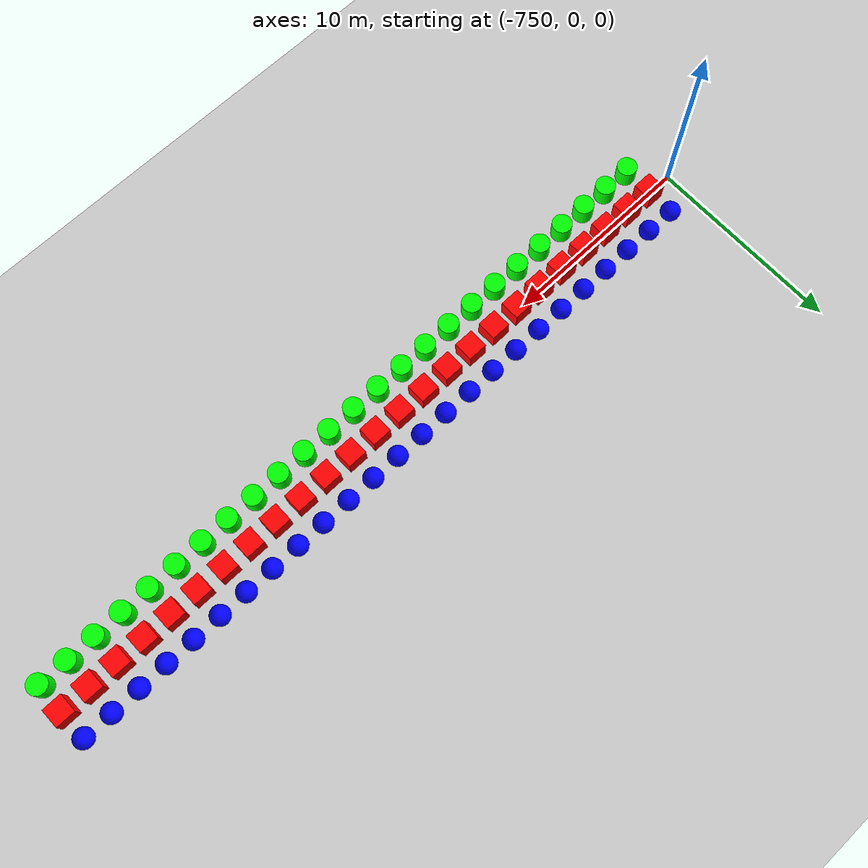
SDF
<sdf version="1.6">
 <world name="shapes">
  <model name="ground_plane">
   <static>true</static>
   <link name="link">
    <collision name="collision">
     <geometry><plane><normal>0 0 1</normal><size>100 100</size></plane></geometry>
    </collision>
    <visual name="visual">
     <geometry><plane><normal>0 0 1</normal><size>100 100</size></plane></geometry>
     <material>
      <ambient>0.8 0.8 0.8 1</ambient>
      <diffuse>0.8 0.8 0.8 1</diffuse>
      <specular>0.8 0.8 0.8 1</specular>
     </material>
    </visual>
   </link>
  </model>
  <model name="box_1">
   <static>true</static>
   <pose>-748.5 0 0.5 0 0 0</pose>
   <link name="box_link">
    <inertial>
     <inertia><ixx>1</ixx><ixy>0</ixy><ixz>0</ixz><iyy>1</iyy><iyz>0</iyz><izz>1</izz></inertia>
     <mass>1.0</mass>
    </inertial>
    <collision name="box_collision"><geometry><box><size>1 1 1</size></box></geometry></collision>
    <visual name="box_visual">
     <geometry><box><size>1 1 1</size></box></geometry>
     <material><ambient>1 0 0 1</ambient><diffuse>1 0 0 1</diffuse><specular>1 0 0 1</specular></material>
    </visual>
   </link>
  </model>
  <model name="cylinder_1">
   <static>true</static>
   <pose>-748.5 -1.5 0.5 0 0 0</pose>
   <link name="cylinder_link">
    <inertial>
     <inertia><ixx>2</ixx><ixy>0</ixy><ixz>0</ixz><iyy>2</iyy><iyz>0</iyz><izz>2</izz></inertia>
     <mass>2.0</mass>
    </inertial>
    <collision name="cylinder_collision">
     <geometry><cylinder><radius>0.5</radius><length>1.0</length></cylinder></geometry>
    </collision>
    <visual name="cylinder_visual">
     <geometry><cylinder><radius>0.5</radius><length>1.0</length></cylinder></geometry>
     <material><ambient>0 1 0 1</ambient><diffuse>0 1 0 1</diffuse><specular>0 1 0 1</specular></material>
    </visual>
   </link>
  </model>
  <model name="sphere_1">
   <static>true</static>
   <pose>-748.5 1.5 0.5 0 0 0</pose>
   <link name="sphere_link">
    <inertial>
     <inertia><ixx>3</ixx><ixy>0</ixy><ixz>0</ixz><iyy>3</iyy><iyz>0</iyz><izz>3</izz></inertia>
     <mass>3.0</mass>
    </inertial>
    <collision name="sphere_collision"><geometry><sphere><radius>0.5</radius></sphere></geometry></collision>
    <visual name="sphere_visual">
     <geometry><sphere><radius>0.5</radius></sphere></geometry>
     <material><ambient>0 0 1 1</ambient><diffuse>0 0 1 1</diffuse><specular>0 0 1 1</specular></material>
    </visual>
   </link>
  </model>
  <model name="box_2">
   <static>true</static>
   <pose>-747.0 0 0.5 0 0 0</pose>
   <link name="box_link">
    <inertial>
     <inertia><ixx>1</ixx><ixy>0</ixy><ixz>0</ixz><iyy>1</iyy><iyz>0</iyz><izz>1</izz></inertia>
     <mass>1.0</mass>
    </inertial>
    <collision name="box_collision"><geometry><box><size>1 1 1</size></box></geometry></collision>
    <visual name="box_visual">
     <geometry><box><size>1 1 1</size></box></geometry>
     <material><ambient>1 0 0 1</ambient><diffuse>1 0 0 1</diffuse><specular>1 0 0 1</specular></material>
    </visual>
   </link>
  </model>
  <model name="cylinder_2">
   <static>true</static>
   <pose>-747.0 -1.5 0.5 0 0 0</pose>
   <link name="cylinder_link">
    <inertial>
     <inertia><ixx>2</ixx><ixy>0</ixy><ixz>0</ixz><iyy>2</iyy><iyz>0</iyz><izz>2</izz></inertia>
     <mass>2.0</mass>
    </inertial>
    <collision name="cylinder_collision">
     <geometry><cylinder><radius>0.5</radius><length>1.0</length></cylinder></geometry>
    </collision>
    <visual name="cylinder_visual">
     <geometry><cylinder><radius>0.5</radius><length>1.0</length></cylinder></geometry>
     <material><ambient>0 1 0 1</ambient><diffuse>0 1 0 1</diffuse><specular>0 1 0 1</specular></material>
    </visual>
   </link>
  </model>
  <model name="sphere_2">
   <static>true</static>
   <pose>-747.0 1.5 0.5 0 0 0</pose>
   <link name="sphere_link">
    <inertial>
     <inertia><ixx>3</ixx><ixy>0</ixy><ixz>0</ixz><iyy>3</iyy><iyz>0</iyz><izz>3</izz></inertia>
     <mass>3.0</mass>
    </inertial>
    <collision name="sphere_collision"><geometry><sphere><radius>0.5</radius></sphere></geometry></collision>
    <visual name="sphere_visual">
     <geometry><sphere><radius>0.5</radius></sphere></geometry>
     <material><ambient>0 0 1 1</ambient><diffuse>0 0 1 1</diffuse><specular>0 0 1 1</specular></material>
    </visual>
   </link>
  </model>
  <model name="box_3">
   <static>true</static>
   <pose>-745.5 0 0.5 0 0 0</pose>
   <link name="box_link">
    <inertial>
     <inertia><ixx>1</ixx><ixy>0</ixy><ixz>0</ixz><iyy>1</iyy><iyz>0</iyz><izz>1</izz></inertia>
     <mass>1.0</mass>
    </inertial>
    <collision name="box_collision"><geometry><box><size>1 1 1</size></box></geometry></collision>
    <visual name="box_visual">
     <geometry><box><size>1 1 1</size></box></geometry>
     <material><ambient>1 0 0 1</ambient><diffuse>1 0 0 1</diffuse><specular>1 0 0 1</specular></material>
    </visual>
   </link>
  </model>
  <model name="cylinder_3">
   <static>true</static>
   <pose>-745.5 -1.5 0.5 0 0 0</pose>
   <link name="cylinder_link">
    <inertial>
     <inertia><ixx>2</ixx><ixy>0</ixy><ixz>0</ixz><iyy>2</iyy><iyz>0</iyz><izz>2</izz></inertia>
     <mass>2.0</mass>
    </inertial>
    <collision name="cylinder_collision">
     <geometry><cylinder><radius>0.5</radius><length>1.0</length></cylinder></geometry>
    </collision>
    <visual name="cylinder_visual">
     <geometry><cylinder><radius>0.5</radius><length>1.0</length></cylinder></geometry>
     <material><ambient>0 1 0 1</ambient><diffuse>0 1 0 1</diffuse><specular>0 1 0 1</specular></material>
    </visual>
   </link>
  </model>
  <model name="sphere_3">
   <static>true</static>
   <pose>-745.5 1.5 0.5 0 0 0</pose>
   <link name="sphere_link">
    <inertial>
     <inertia><ixx>3</ixx><ixy>0</ixy><ixz>0</ixz><iyy>3</iyy><iyz>0</iyz><izz>3</izz></inertia>
     <mass>3.0</mass>
    </inertial>
    <collision name="sphere_collision"><geometry><sphere><radius>0.5</radius></sphere></geometry></collision>
    <visual name="sphere_visual">
     <geometry><sphere><radius>0.5</radius></sphere></geometry>
     <material><ambient>0 0 1 1</ambient><diffuse>0 0 1 1</diffuse><specular>0 0 1 1</specular></material>
    </visual>
   </link>
  </model>
  <model name="box_4">
   <static>true</static>
   <pose>-744.0 0 0.5 0 0 0</pose>
   <link name="box_link">
    <inertial>
     <inertia><ixx>1</ixx><ixy>0</ixy><ixz>0</ixz><iyy>1</iyy><iyz>0</iyz><izz>1</izz></inertia>
     <mass>1.0</mass>
    </inertial>
    <collision name="box_collision"><geometry><box><size>1 1 1</size></box></geometry></collision>
    <visual name="box_visual">
     <geometry><box><size>1 1 1</size></box></geometry>
     <material><ambient>1 0 0 1</ambient><diffuse>1 0 0 1</diffuse><specular>1 0 0 1</specular></material>
    </visual>
   </link>
  </model>
  <model name="cylinder_4">
   <static>true</static>
   <pose>-744.0 -1.5 0.5 0 0 0</pose>
   <link name="cylinder_link">
    <inertial>
     <inertia><ixx>2</ixx><ixy>0</ixy><ixz>0</ixz><iyy>2</iyy><iyz>0</iyz><izz>2</izz></inertia>
     <mass>2.0</mass>
    </inertial>
    <collision name="cylinder_collision">
     <geometry><cylinder><radius>0.5</radius><length>1.0</length></cylinder></geometry>
    </collision>
    <visual name="cylinder_visual">
     <geometry><cylinder><radius>0.5</radius><length>1.0</length></cylinder></geometry>
     <material><ambient>0 1 0 1</ambient><diffuse>0 1 0 1</diffuse><specular>0 1 0 1</specular></material>
    </visual>
   </link>
  </model>
  <model name="sphere_4">
   <static>true</static>
   <pose>-744.0 1.5 0.5 0 0 0</pose>
   <link name="sphere_link">
    <inertial>
     <inertia><ixx>3</ixx><ixy>0</ixy><ixz>0</ixz><iyy>3</iyy><iyz>0</iyz><izz>3</izz></inertia>
     <mass>3.0</mass>
    </inertial>
    <collision name="sphere_collision"><geometry><sphere><radius>0.5</radius></sphere></geometry></collision>
    <visual name="sphere_visual">
     <geometry><sphere><radius>0.5</radius></sphere></geometry>
     <material><ambient>0 0 1 1</ambient><diffuse>0 0 1 1</diffuse><specular>0 0 1 1</specular></material>
    </visual>
   </link>
  </model>
  <model name="box_5">
   <static>true</static>
   <pose>-742.5 0 0.5 0 0 0</pose>
   <link name="box_link">
    <inertial>
     <inertia><ixx>1</ixx><ixy>0</ixy><ixz>0</ixz><iyy>1</iyy><iyz>0</iyz><izz>1</izz></inertia>
     <mass>1.0</mass>
    </inertial>
    <collision name="box_collision"><geometry><box><size>1 1 1</size></box></geometry></collision>
    <visual name="box_visual">
     <geometry><box><size>1 1 1</size></box></geometry>
     <material><ambient>1 0 0 1</ambient><diffuse>1 0 0 1</diffuse><specular>1 0 0 1</specular></material>
    </visual>
   </link>
  </model>
  <model name="cylinder_5">
   <static>true</static>
   <pose>-742.5 -1.5 0.5 0 0 0</pose>
   <link name="cylinder_link">
    <inertial>
     <inertia><ixx>2</ixx><ixy>0</ixy><ixz>0</ixz><iyy>2</iyy><iyz>0</iyz><izz>2</izz></inertia>
     <mass>2.0</mass>
    </inertial>
    <collision name="cylinder_collision">
     <geometry><cylinder><radius>0.5</radius><length>1.0</length></cylinder></geometry>
    </collision>
    <visual name="cylinder_visual">
     <geometry><cylinder><radius>0.5</radius><length>1.0</length></cylinder></geometry>
     <material><ambient>0 1 0 1</ambient><diffuse>0 1 0 1</diffuse><specular>0 1 0 1</specular></material>
    </visual>
   </link>
  </model>
  <model name="sphere_5">
   <static>true</static>
   <pose>-742.5 1.5 0.5 0 0 0</pose>
   <link name="sphere_link">
    <inertial>
     <inertia><ixx>3</ixx><ixy>0</ixy><ixz>0</ixz><iyy>3</iyy><iyz>0</iyz><izz>3</izz></inertia>
     <mass>3.0</mass>
    </inertial>
    <collision name="sphere_collision"><geometry><sphere><radius>0.5</radius></sphere></geometry></collision>
    <visual name="sphere_visual">
     <geometry><sphere><radius>0.5</radius></sphere></geometry>
     <material><ambient>0 0 1 1</ambient><diffuse>0 0 1 1</diffuse><specular>0 0 1 1</specular></material>
    </visual>
   </link>
  </model>
  <model name="box_6">
   <static>true</static>
   <pose>-741.0 0 0.5 0 0 0</pose>
   <link name="box_link">
    <inertial>
     <inertia><ixx>1</ixx><ixy>0</ixy><ixz>0</ixz><iyy>1</iyy><iyz>0</iyz><izz>1</izz></inertia>
     <mass>1.0</mass>
    </inertial>
    <collision name="box_collision"><geometry><box><size>1 1 1</size></box></geometry></collision>
    <visual name="box_visual">
     <geometry><box><size>1 1 1</size></box></geometry>
     <material><ambient>1 0 0 1</ambient><diffuse>1 0 0 1</diffuse><specular>1 0 0 1</specular></material>
    </visual>
   </link>
  </model>
  <model name="cylinder_6">
   <static>true</static>
   <pose>-741.0 -1.5 0.5 0 0 0</pose>
   <link name="cylinder_link">
    <inertial>
     <inertia><ixx>2</ixx><ixy>0</ixy><ixz>0</ixz><iyy>2</iyy><iyz>0</iyz><izz>2</izz></inertia>
     <mass>2.0</mass>
    </inertial>
    <collision name="cylinder_collision">
     <geometry><cylinder><radius>0.5</radius><length>1.0</length></cylinder></geometry>
    </collision>
    <visual name="cylinder_visual">
     <geometry><cylinder><radius>0.5</radius><length>1.0</length></cylinder></geometry>
     <material><ambient>0 1 0 1</ambient><diffuse>0 1 0 1</diffuse><specular>0 1 0 1</specular></material>
    </visual>
   </link>
  </model>
  <model name="sphere_6">
   <static>true</static>
   <pose>-741.0 1.5 0.5 0 0 0</pose>
   <link name="sphere_link">
    <inertial>
     <inertia><ixx>3</ixx><ixy>0</ixy><ixz>0</ixz><iyy>3</iyy><iyz>0</iyz><izz>3</izz></inertia>
     <mass>3.0</mass>
    </inertial>
    <collision name="sphere_collision"><geometry><sphere><radius>0.5</radius></sphere></geometry></collision>
    <visual name="sphere_visual">
     <geometry><sphere><radius>0.5</radius></sphere></geometry>
     <material><ambient>0 0 1 1</ambient><diffuse>0 0 1 1</diffuse><specular>0 0 1 1</specular></material>
    </visual>
   </link>
  </model>
  <model name="box_7">
   <static>true</static>
   <pose>-739.5 0 0.5 0 0 0</pose>
   <link name="box_link">
    <inertial>
     <inertia><ixx>1</ixx><ixy>0</ixy><ixz>0</ixz><iyy>1</iyy><iyz>0</iyz><izz>1</izz></inertia>
     <mass>1.0</mass>
    </inertial>
    <collision name="box_collision"><geometry><box><size>1 1 1</size></box></geometry></collision>
    <visual name="box_visual">
     <geometry><box><size>1 1 1</size></box></geometry>
     <material><ambient>1 0 0 1</ambient><diffuse>1 0 0 1</diffuse><specular>1 0 0 1</specular></material>
    </visual>
   </link>
  </model>
  <model name="cylinder_7">
   <static>true</static>
   <pose>-739.5 -1.5 0.5 0 0 0</pose>
   <link name="cylinder_link">
    <inertial>
     <inertia><ixx>2</ixx><ixy>0</ixy><ixz>0</ixz><iyy>2</iyy><iyz>0</iyz><izz>2</izz></inertia>
     <mass>2.0</mass>
    </inertial>
    <collision name="cylinder_collision">
     <geometry><cylinder><radius>0.5</radius><length>1.0</length></cylinder></geometry>
    </collision>
    <visual name="cylinder_visual">
     <geometry><cylinder><radius>0.5</radius><length>1.0</length></cylinder></geometry>
     <material><ambient>0 1 0 1</ambient><diffuse>0 1 0 1</diffuse><specular>0 1 0 1</specular></material>
    </visual>
   </link>
  </model>
  <model name="sphere_7">
   <static>true</static>
   <pose>-739.5 1.5 0.5 0 0 0</pose>
   <link name="sphere_link">
    <inertial>
     <inertia><ixx>3</ixx><ixy>0</ixy><ixz>0</ixz><iyy>3</iyy><iyz>0</iyz><izz>3</izz></inertia>
     <mass>3.0</mass>
    </inertial>
    <collision name="sphere_collision"><geometry><sphere><radius>0.5</radius></sphere></geometry></collision>
    <visual name="sphere_visual">
     <geometry><sphere><radius>0.5</radius></sphere></geometry>
     <material><ambient>0 0 1 1</ambient><diffuse>0 0 1 1</diffuse><specular>0 0 1 1</specular></material>
    </visual>
   </link>
  </model>
  <model name="box_8">
   <static>true</static>
   <pose>-738.0 0 0.5 0 0 0</pose>
   <link name="box_link">
    <inertial>
     <inertia><ixx>1</ixx><ixy>0</ixy><ixz>0</ixz><iyy>1</iyy><iyz>0</iyz><izz>1</izz></inertia>
     <mass>1.0</mass>
    </inertial>
    <collision name="box_collision"><geometry><box><size>1 1 1</size></box></geometry></collision>
    <visual name="box_visual">
     <geometry><box><size>1 1 1</size></box></geometry>
     <material><ambient>1 0 0 1</ambient><diffuse>1 0 0 1</diffuse><specular>1 0 0 1</specular></material>
    </visual>
   </link>
  </model>
  <model name="cylinder_8">
   <static>true</static>
   <pose>-738.0 -1.5 0.5 0 0 0</pose>
   <link name="cylinder_link">
    <inertial>
     <inertia><ixx>2</ixx><ixy>0</ixy><ixz>0</ixz><iyy>2</iyy><iyz>0</iyz><izz>2</izz></inertia>
     <mass>2.0</mass>
    </inertial>
    <collision name="cylinder_collision">
     <geometry><cylinder><radius>0.5</radius><length>1.0</length></cylinder></geometry>
    </collision>
    <visual name="cylinder_visual">
     <geometry><cylinder><radius>0.5</radius><length>1.0</length></cylinder></geometry>
     <material><ambient>0 1 0 1</ambient><diffuse>0 1 0 1</diffuse><specular>0 1 0 1</specular></material>
    </visual>
   </link>
  </model>
  <model name="sphere_8">
   <static>true</static>
   <pose>-738.0 1.5 0.5 0 0 0</pose>
   <link name="sphere_link">
    <inertial>
     <inertia><ixx>3</ixx><ixy>0</ixy><ixz>0</ixz><iyy>3</iyy><iyz>0</iyz><izz>3</izz></inertia>
     <mass>3.0</mass>
    </inertial>
    <collision name="sphere_collision"><geometry><sphere><radius>0.5</radius></sphere></geometry></collision>
    <visual name="sphere_visual">
     <geometry><sphere><radius>0.5</radius></sphere></geometry>
     <material><ambient>0 0 1 1</ambient><diffuse>0 0 1 1</diffuse><specular>0 0 1 1</specular></material>
    </visual>
   </link>
  </model>
  <model name="box_9">
   <static>true</static>
   <pose>-736.5 0 0.5 0 0 0</pose>
   <link name="box_link">
    <inertial>
     <inertia><ixx>1</ixx><ixy>0</ixy><ixz>0</ixz><iyy>1</iyy><iyz>0</iyz><izz>1</izz></inertia>
     <mass>1.0</mass>
    </inertial>
    <collision name="box_collision"><geometry><box><size>1 1 1</size></box></geometry></collision>
    <visual name="box_visual">
     <geometry><box><size>1 1 1</size></box></geometry>
     <material><ambient>1 0 0 1</ambient><diffuse>1 0 0 1</diffuse><specular>1 0 0 1</specular></material>
    </visual>
   </link>
  </model>
  <model name="cylinder_9">
   <static>true</static>
   <pose>-736.5 -1.5 0.5 0 0 0</pose>
   <link name="cylinder_link">
    <inertial>
     <inertia><ixx>2</ixx><ixy>0</ixy><ixz>0</ixz><iyy>2</iyy><iyz>0</iyz><izz>2</izz></inertia>
     <mass>2.0</mass>
    </inertial>
    <collision name="cylinder_collision">
     <geometry><cylinder><radius>0.5</radius><length>1.0</length></cylinder></geometry>
    </collision>
    <visual name="cylinder_visual">
     <geometry><cylinder><radius>0.5</radius><length>1.0</length></cylinder></geometry>
     <material><ambient>0 1 0 1</ambient><diffuse>0 1 0 1</diffuse><specular>0 1 0 1</specular></material>
    </visual>
   </link>
  </model>
  <model name="sphere_9">
   <static>true</static>
   <pose>-736.5 1.5 0.5 0 0 0</pose>
   <link name="sphere_link">
    <inertial>
     <inertia><ixx>3</ixx><ixy>0</ixy><ixz>0</ixz><iyy>3</iyy><iyz>0</iyz><izz>3</izz></inertia>
     <mass>3.0</mass>
    </inertial>
    <collision name="sphere_collision"><geometry><sphere><radius>0.5</radius></sphere></geometry></collision>
    <visual name="sphere_visual">
     <geometry><sphere><radius>0.5</radius></sphere></geometry>
     <material><ambient>0 0 1 1</ambient><diffuse>0 0 1 1</diffuse><specular>0 0 1 1</specular></material>
    </visual>
   </link>
  </model>
  <model name="box_10">
   <static>true</static>
   <pose>-735.0 0 0.5 0 0 0</pose>
   <link name="box_link">
    <inertial>
     <inertia><ixx>1</ixx><ixy>0</ixy><ixz>0</ixz><iyy>1</iyy><iyz>0</iyz><izz>1</izz></inertia>
     <mass>1.0</mass>
    </inertial>
    <collision name="box_collision"><geometry><box><size>1 1 1</size></box></geometry></collision>
    <visual name="box_visual">
     <geometry><box><size>1 1 1</size></box></geometry>
     <material><ambient>1 0 0 1</ambient><diffuse>1 0 0 1</diffuse><specular>1 0 0 1</specular></material>
    </visual>
   </link>
  </model>
  <model name="cylinder_10">
   <static>true</static>
   <pose>-735.0 -1.5 0.5 0 0 0</pose>
   <link name="cylinder_link">
    <inertial>
     <inertia><ixx>2</ixx><ixy>0</ixy><ixz>0</ixz><iyy>2</iyy><iyz>0</iyz><izz>2</izz></inertia>
     <mass>2.0</mass>
    </inertial>
    <collision name="cylinder_collision">
     <geometry><cylinder><radius>0.5</radius><length>1.0</length></cylinder></geometry>
    </collision>
    <visual name="cylinder_visual">
     <geometry><cylinder><radius>0.5</radius><length>1.0</length></cylinder></geometry>
     <material><ambient>0 1 0 1</ambient><diffuse>0 1 0 1</diffuse><specular>0 1 0 1</specular></material>
    </visual>
   </link>
  </model>
  <model name="sphere_10">
   <static>true</static>
   <pose>-735.0 1.5 0.5 0 0 0</pose>
   <link name="sphere_link">
    <inertial>
     <inertia><ixx>3</ixx><ixy>0</ixy><ixz>0</ixz><iyy>3</iyy><iyz>0</iyz><izz>3</izz></inertia>
     <mass>3.0</mass>
    </inertial>
    <collision name="sphere_collision"><geometry><sphere><radius>0.5</radius></sphere></geometry></collision>
    <visual name="sphere_visual">
     <geometry><sphere><radius>0.5</radius></sphere></geometry>
     <material><ambient>0 0 1 1</ambient><diffuse>0 0 1 1</diffuse><specular>0 0 1 1</specular></material>
    </visual>
   </link>
  </model>
  <model name="box_11">
   <static>true</static>
   <pose>-733.5 0 0.5 0 0 0</pose>
   <link name="box_link">
    <inertial>
     <inertia><ixx>1</ixx><ixy>0</ixy><ixz>0</ixz><iyy>1</iyy><iyz>0</iyz><izz>1</izz></inertia>
     <mass>1.0</mass>
    </inertial>
    <collision name="box_collision"><geometry><box><size>1 1 1</size></box></geometry></collision>
    <visual name="box_visual">
     <geometry><box><size>1 1 1</size></box></geometry>
     <material><ambient>1 0 0 1</ambient><diffuse>1 0 0 1</diffuse><specular>1 0 0 1</specular></material>
    </visual>
   </link>
  </model>
  <model name="cylinder_11">
   <static>true</static>
   <pose>-733.5 -1.5 0.5 0 0 0</pose>
   <link name="cylinder_link">
    <inertial>
     <inertia><ixx>2</ixx><ixy>0</ixy><ixz>0</ixz><iyy>2</iyy><iyz>0</iyz><izz>2</izz></inertia>
     <mass>2.0</mass>
    </inertial>
    <collision name="cylinder_collision">
     <geometry><cylinder><radius>0.5</radius><length>1.0</length></cylinder></geometry>
    </collision>
    <visual name="cylinder_visual">
     <geometry><cylinder><radius>0.5</radius><length>1.0</length></cylinder></geometry>
     <material><ambient>0 1 0 1</ambient><diffuse>0 1 0 1</diffuse><specular>0 1 0 1</specular></material>
    </visual>
   </link>
  </model>
  <model name="sphere_11">
   <static>true</static>
   <pose>-733.5 1.5 0.5 0 0 0</pose>
   <link name="sphere_link">
    <inertial>
     <inertia><ixx>3</ixx><ixy>0</ixy><ixz>0</ixz><iyy>3</iyy><iyz>0</iyz><izz>3</izz></inertia>
     <mass>3.0</mass>
    </inertial>
    <collision name="sphere_collision"><geometry><sphere><radius>0.5</radius></sphere></geometry></collision>
    <visual name="sphere_visual">
     <geometry><sphere><radius>0.5</radius></sphere></geometry>
     <material><ambient>0 0 1 1</ambient><diffuse>0 0 1 1</diffuse><specular>0 0 1 1</specular></material>
    </visual>
   </link>
  </model>
  <model name="box_12">
   <static>true</static>
   <pose>-732.0 0 0.5 0 0 0</pose>
   <link name="box_link">
    <inertial>
     <inertia><ixx>1</ixx><ixy>0</ixy><ixz>0</ixz><iyy>1</iyy><iyz>0</iyz><izz>1</izz></inertia>
     <mass>1.0</mass>
    </inertial>
    <collision name="box_collision"><geometry><box><size>1 1 1</size></box></geometry></collision>
    <visual name="box_visual">
     <geometry><box><size>1 1 1</size></box></geometry>
     <material><ambient>1 0 0 1</ambient><diffuse>1 0 0 1</diffuse><specular>1 0 0 1</specular></material>
    </visual>
   </link>
  </model>
  <model name="cylinder_12">
   <static>true</static>
   <pose>-732.0 -1.5 0.5 0 0 0</pose>
   <link name="cylinder_link">
    <inertial>
     <inertia><ixx>2</ixx><ixy>0</ixy><ixz>0</ixz><iyy>2</iyy><iyz>0</iyz><izz>2</izz></inertia>
     <mass>2.0</mass>
    </inertial>
    <collision name="cylinder_collision">
     <geometry><cylinder><radius>0.5</radius><length>1.0</length></cylinder></geometry>
    </collision>
    <visual name="cylinder_visual">
     <geometry><cylinder><radius>0.5</radius><length>1.0</length></cylinder></geometry>
     <material><ambient>0 1 0 1</ambient><diffuse>0 1 0 1</diffuse><specular>0 1 0 1</specular></material>
    </visual>
   </link>
  </model>
  <model name="sphere_12">
   <static>true</static>
   <pose>-732.0 1.5 0.5 0 0 0</pose>
   <link name="sphere_link">
    <inertial>
     <inertia><ixx>3</ixx><ixy>0</ixy><ixz>0</ixz><iyy>3</iyy><iyz>0</iyz><izz>3</izz></inertia>
     <mass>3.0</mass>
    </inertial>
    <collision name="sphere_collision"><geometry><sphere><radius>0.5</radius></sphere></geometry></collision>
    <visual name="sphere_visual">
     <geometry><sphere><radius>0.5</radius></sphere></geometry>
     <material><ambient>0 0 1 1</ambient><diffuse>0 0 1 1</diffuse><specular>0 0 1 1</specular></material>
    </visual>
   </link>
  </model>
  <model name="box_13">
   <static>true</static>
   <pose>-730.5 0 0.5 0 0 0</pose>
   <link name="box_link">
    <inertial>
     <inertia><ixx>1</ixx><ixy>0</ixy><ixz>0</ixz><iyy>1</iyy><iyz>0</iyz><izz>1</izz></inertia>
     <mass>1.0</mass>
    </inertial>
    <collision name="box_collision"><geometry><box><size>1 1 1</size></box></geometry></collision>
    <visual name="box_visual">
     <geometry><box><size>1 1 1</size></box></geometry>
     <material><ambient>1 0 0 1</ambient><diffuse>1 0 0 1</diffuse><specular>1 0 0 1</specular></material>
    </visual>
   </link>
  </model>
  <model name="cylinder_13">
   <static>true</static>
   <pose>-730.5 -1.5 0.5 0 0 0</pose>
   <link name="cylinder_link">
    <inertial>
     <inertia><ixx>2</ixx><ixy>0</ixy><ixz>0</ixz><iyy>2</iyy><iyz>0</iyz><izz>2</izz></inertia>
     <mass>2.0</mass>
    </inertial>
    <collision name="cylinder_collision">
     <geometry><cylinder><radius>0.5</radius><length>1.0</length></cylinder></geometry>
    </collision>
    <visual name="cylinder_visual">
     <geometry><cylinder><radius>0.5</radius><length>1.0</length></cylinder></geometry>
     <material><ambient>0 1 0 1</ambient><diffuse>0 1 0 1</diffuse><specular>0 1 0 1</specular></material>
    </visual>
   </link>
  </model>
  <model name="sphere_13">
   <static>true</static>
   <pose>-730.5 1.5 0.5 0 0 0</pose>
   <link name="sphere_link">
    <inertial>
     <inertia><ixx>3</ixx><ixy>0</ixy><ixz>0</ixz><iyy>3</iyy><iyz>0</iyz><izz>3</izz></inertia>
     <mass>3.0</mass>
    </inertial>
    <collision name="sphere_collision"><geometry><sphere><radius>0.5</radius></sphere></geometry></collision>
    <visual name="sphere_visual">
     <geometry><sphere><radius>0.5</radius></sphere></geometry>
     <material><ambient>0 0 1 1</ambient><diffuse>0 0 1 1</diffuse><specular>0 0 1 1</specular></material>
    </visual>
   </link>
  </model>
  <model name="box_14">
   <static>true</static>
   <pose>-729.0 0 0.5 0 0 0</pose>
   <link name="box_link">
    <inertial>
     <inertia><ixx>1</ixx><ixy>0</ixy><ixz>0</ixz><iyy>1</iyy><iyz>0</iyz><izz>1</izz></inertia>
     <mass>1.0</mass>
    </inertial>
    <collision name="box_collision"><geometry><box><size>1 1 1</size></box></geometry></collision>
    <visual name="box_visual">
     <geometry><box><size>1 1 1</size></box></geometry>
     <material><ambient>1 0 0 1</ambient><diffuse>1 0 0 1</diffuse><specular>1 0 0 1</specular></material>
    </visual>
   </link>
  </model>
  <model name="cylinder_14">
   <static>true</static>
   <pose>-729.0 -1.5 0.5 0 0 0</pose>
   <link name="cylinder_link">
    <inertial>
     <inertia><ixx>2</ixx><ixy>0</ixy><ixz>0</ixz><iyy>2</iyy><iyz>0</iyz><izz>2</izz></inertia>
     <mass>2.0</mass>
    </inertial>
    <collision name="cylinder_collision">
     <geometry><cylinder><radius>0.5</radius><length>1.0</length></cylinder></geometry>
    </collision>
    <visual name="cylinder_visual">
     <geometry><cylinder><radius>0.5</radius><length>1.0</length></cylinder></geometry>
     <material><ambient>0 1 0 1</ambient><diffuse>0 1 0 1</diffuse><specular>0 1 0 1</specular></material>
    </visual>
   </link>
  </model>
  <model name="sphere_14">
   <static>true</static>
   <pose>-729.0 1.5 0.5 0 0 0</pose>
   <link name="sphere_link">
    <inertial>
     <inertia><ixx>3</ixx><ixy>0</ixy><ixz>0</ixz><iyy>3</iyy><iyz>0</iyz><izz>3</izz></inertia>
     <mass>3.0</mass>
    </inertial>
    <collision name="sphere_collision"><geometry><sphere><radius>0.5</radius></sphere></geometry></collision>
    <visual name="sphere_visual">
     <geometry><sphere><radius>0.5</radius></sphere></geometry>
     <material><ambient>0 0 1 1</ambient><diffuse>0 0 1 1</diffuse><specular>0 0 1 1</specular></material>
    </visual>
   </link>
  </model>
  <model name="box_15">
   <static>true</static>
   <pose>-727.5 0 0.5 0 0 0</pose>
   <link name="box_link">
    <inertial>
     <inertia><ixx>1</ixx><ixy>0</ixy><ixz>0</ixz><iyy>1</iyy><iyz>0</iyz><izz>1</izz></inertia>
     <mass>1.0</mass>
    </inertial>
    <collision name="box_collision"><geometry><box><size>1 1 1</size></box></geometry></collision>
    <visual name="box_visual">
     <geometry><box><size>1 1 1</size></box></geometry>
     <material><ambient>1 0 0 1</ambient><diffuse>1 0 0 1</diffuse><specular>1 0 0 1</specular></material>
    </visual>
   </link>
  </model>
  <model name="cylinder_15">
   <static>true</static>
   <pose>-727.5 -1.5 0.5 0 0 0</pose>
   <link name="cylinder_link">
    <inertial>
     <inertia><ixx>2</ixx><ixy>0</ixy><ixz>0</ixz><iyy>2</iyy><iyz>0</iyz><izz>2</izz></inertia>
     <mass>2.0</mass>
    </inertial>
    <collision name="cylinder_collision">
     <geometry><cylinder><radius>0.5</radius><length>1.0</length></cylinder></geometry>
    </collision>
    <visual name="cylinder_visual">
     <geometry><cylinder><radius>0.5</radius><length>1.0</length></cylinder></geometry>
     <material><ambient>0 1 0 1</ambient><diffuse>0 1 0 1</diffuse><specular>0 1 0 1</specular></material>
    </visual>
   </link>
  </model>
  <model name="sphere_15">
   <static>true</static>
   <pose>-727.5 1.5 0.5 0 0 0</pose>
   <link name="sphere_link">
    <inertial>
     <inertia><ixx>3</ixx><ixy>0</ixy><ixz>0</ixz><iyy>3</iyy><iyz>0</iyz><izz>3</izz></inertia>
     <mass>3.0</mass>
    </inertial>
    <collision name="sphere_collision"><geometry><sphere><radius>0.5</radius></sphere></geometry></collision>
    <visual name="sphere_visual">
     <geometry><sphere><radius>0.5</radius></sphere></geometry>
     <material><ambient>0 0 1 1</ambient><diffuse>0 0 1 1</diffuse><specular>0 0 1 1</specular></material>
    </visual>
   </link>
  </model>
  <model name="box_16">
   <static>true</static>
   <pose>-726.0 0 0.5 0 0 0</pose>
   <link name="box_link">
    <inertial>
     <inertia><ixx>1</ixx><ixy>0</ixy><ixz>0</ixz><iyy>1</iyy><iyz>0</iyz><izz>1</izz></inertia>
     <mass>1.0</mass>
    </inertial>
    <collision name="box_collision"><geometry><box><size>1 1 1</size></box></geometry></collision>
    <visual name="box_visual">
     <geometry><box><size>1 1 1</size></box></geometry>
     <material><ambient>1 0 0 1</ambient><diffuse>1 0 0 1</diffuse><specular>1 0 0 1</specular></material>
    </visual>
   </link>
  </model>
  <model name="cylinder_16">
   <static>true</static>
   <pose>-726.0 -1.5 0.5 0 0 0</pose>
   <link name="cylinder_link">
    <inertial>
     <inertia><ixx>2</ixx><ixy>0</ixy><ixz>0</ixz><iyy>2</iyy><iyz>0</iyz><izz>2</izz></inertia>
     <mass>2.0</mass>
    </inertial>
    <collision name="cylinder_collision">
     <geometry><cylinder><radius>0.5</radius><length>1.0</length></cylinder></geometry>
    </collision>
    <visual name="cylinder_visual">
     <geometry><cylinder><radius>0.5</radius><length>1.0</length></cylinder></geometry>
     <material><ambient>0 1 0 1</ambient><diffuse>0 1 0 1</diffuse><specular>0 1 0 1</specular></material>
    </visual>
   </link>
  </model>
  <model name="sphere_16">
   <static>true</static>
   <pose>-726.0 1.5 0.5 0 0 0</pose>
   <link name="sphere_link">
    <inertial>
     <inertia><ixx>3</ixx><ixy>0</ixy><ixz>0</ixz><iyy>3</iyy><iyz>0</iyz><izz>3</izz></inertia>
     <mass>3.0</mass>
    </inertial>
    <collision name="sphere_collision"><geometry><sphere><radius>0.5</radius></sphere></geometry></collision>
    <visual name="sphere_visual">
     <geometry><sphere><radius>0.5</radius></sphere></geometry>
     <material><ambient>0 0 1 1</ambient><diffuse>0 0 1 1</diffuse><specular>0 0 1 1</specular></material>
    </visual>
   </link>
  </model>
  <model name="box_17">
   <static>true</static>
   <pose>-724.5 0 0.5 0 0 0</pose>
   <link name="box_link">
    <inertial>
     <inertia><ixx>1</ixx><ixy>0</ixy><ixz>0</ixz><iyy>1</iyy><iyz>0</iyz><izz>1</izz></inertia>
     <mass>1.0</mass>
    </inertial>
    <collision name="box_collision"><geometry><box><size>1 1 1</size></box></geometry></collision>
    <visual name="box_visual">
     <geometry><box><size>1 1 1</size></box></geometry>
     <material><ambient>1 0 0 1</ambient><diffuse>1 0 0 1</diffuse><specular>1 0 0 1</specular></material>
    </visual>
   </link>
  </model>
  <model name="cylinder_17">
   <static>true</static>
   <pose>-724.5 -1.5 0.5 0 0 0</pose>
   <link name="cylinder_link">
    <inertial>
     <inertia><ixx>2</ixx><ixy>0</ixy><ixz>0</ixz><iyy>2</iyy><iyz>0</iyz><izz>2</izz></inertia>
     <mass>2.0</mass>
    </inertial>
    <collision name="cylinder_collision">
     <geometry><cylinder><radius>0.5</radius><length>1.0</length></cylinder></geometry>
    </collision>
    <visual name="cylinder_visual">
     <geometry><cylinder><radius>0.5</radius><length>1.0</length></cylinder></geometry>
     <material><ambient>0 1 0 1</ambient><diffuse>0 1 0 1</diffuse><specular>0 1 0 1</specular></material>
    </visual>
   </link>
  </model>
  <model name="sphere_17">
   <static>true</static>
   <pose>-724.5 1.5 0.5 0 0 0</pose>
   <link name="sphere_link">
    <inertial>
     <inertia><ixx>3</ixx><ixy>0</ixy><ixz>0</ixz><iyy>3</iyy><iyz>0</iyz><izz>3</izz></inertia>
     <mass>3.0</mass>
    </inertial>
    <collision name="sphere_collision"><geometry><sphere><radius>0.5</radius></sphere></geometry></collision>
    <visual name="sphere_visual">
     <geometry><sphere><radius>0.5</radius></sphere></geometry>
     <material><ambient>0 0 1 1</ambient><diffuse>0 0 1 1</diffuse><specular>0 0 1 1</specular></material>
    </visual>
   </link>
  </model>
  <model name="box_18">
   <static>true</static>
   <pose>-723.0 0 0.5 0 0 0</pose>
   <link name="box_link">
    <inertial>
     <inertia><ixx>1</ixx><ixy>0</ixy><ixz>0</ixz><iyy>1</iyy><iyz>0</iyz><izz>1</izz></inertia>
     <mass>1.0</mass>
    </inertial>
    <collision name="box_collision"><geometry><box><size>1 1 1</size></box></geometry></collision>
    <visual name="box_visual">
     <geometry><box><size>1 1 1</size></box></geometry>
     <material><ambient>1 0 0 1</ambient><diffuse>1 0 0 1</diffuse><specular>1 0 0 1</specular></material>
    </visual>
   </link>
  </model>
  <model name="cylinder_18">
   <static>true</static>
   <pose>-723.0 -1.5 0.5 0 0 0</pose>
   <link name="cylinder_link">
    <inertial>
     <inertia><ixx>2</ixx><ixy>0</ixy><ixz>0</ixz><iyy>2</iyy><iyz>0</iyz><izz>2</izz></inertia>
     <mass>2.0</mass>
    </inertial>
    <collision name="cylinder_collision">
     <geometry><cylinder><radius>0.5</radius><length>1.0</length></cylinder></geometry>
    </collision>
    <visual name="cylinder_visual">
     <geometry><cylinder><radius>0.5</radius><length>1.0</length></cylinder></geometry>
     <material><ambient>0 1 0 1</ambient><diffuse>0 1 0 1</diffuse><specular>0 1 0 1</specular></material>
    </visual>
   </link>
  </model>
  <model name="sphere_18">
   <static>true</static>
   <pose>-723.0 1.5 0.5 0 0 0</pose>
   <link name="sphere_link">
    <inertial>
     <inertia><ixx>3</ixx><ixy>0</ixy><ixz>0</ixz><iyy>3</iyy><iyz>0</iyz><izz>3</izz></inertia>
     <mass>3.0</mass>
    </inertial>
    <collision name="sphere_collision"><geometry><sphere><radius>0.5</radius></sphere></geometry></collision>
    <visual name="sphere_visual">
     <geometry><sphere><radius>0.5</radius></sphere></geometry>
     <material><ambient>0 0 1 1</ambient><diffuse>0 0 1 1</diffuse><specular>0 0 1 1</specular></material>
    </visual>
   </link>
  </model>
  <model name="box_19">
   <static>true</static>
   <pose>-721.5 0 0.5 0 0 0</pose>
   <link name="box_link">
    <inertial>
     <inertia><ixx>1</ixx><ixy>0</ixy><ixz>0</ixz><iyy>1</iyy><iyz>0</iyz><izz>1</izz></inertia>
     <mass>1.0</mass>
    </inertial>
    <collision name="box_collision"><geometry><box><size>1 1 1</size></box></geometry></collision>
    <visual name="box_visual">
     <geometry><box><size>1 1 1</size></box></geometry>
     <material><ambient>1 0 0 1</ambient><diffuse>1 0 0 1</diffuse><specular>1 0 0 1</specular></material>
    </visual>
   </link>
  </model>
  <model name="cylinder_19">
   <static>true</static>
   <pose>-721.5 -1.5 0.5 0 0 0</pose>
   <link name="cylinder_link">
    <inertial>
     <inertia><ixx>2</ixx><ixy>0</ixy><ixz>0</ixz><iyy>2</iyy><iyz>0</iyz><izz>2</izz></inertia>
     <mass>2.0</mass>
    </inertial>
    <collision name="cylinder_collision">
     <geometry><cylinder><radius>0.5</radius><length>1.0</length></cylinder></geometry>
    </collision>
    <visual name="cylinder_visual">
     <geometry><cylinder><radius>0.5</radius><length>1.0</length></cylinder></geometry>
     <material><ambient>0 1 0 1</ambient><diffuse>0 1 0 1</diffuse><specular>0 1 0 1</specular></material>
    </visual>
   </link>
  </model>
  <model name="sphere_19">
   <static>true</static>
   <pose>-721.5 1.5 0.5 0 0 0</pose>
   <link name="sphere_link">
    <inertial>
     <inertia><ixx>3</ixx><ixy>0</ixy><ixz>0</ixz><iyy>3</iyy><iyz>0</iyz><izz>3</izz></inertia>
     <mass>3.0</mass>
    </inertial>
    <collision name="sphere_collision"><geometry><sphere><radius>0.5</radius></sphere></geometry></collision>
    <visual name="sphere_visual">
     <geometry><sphere><radius>0.5</radius></sphere></geometry>
     <material><ambient>0 0 1 1</ambient><diffuse>0 0 1 1</diffuse><specular>0 0 1 1</specular></material>
    </visual>
   </link>
  </model>
  <model name="box_20">
   <static>true</static>
   <pose>-720.0 0 0.5 0 0 0</pose>
   <link name="box_link">
    <inertial>
     <inertia><ixx>1</ixx><ixy>0</ixy><ixz>0</ixz><iyy>1</iyy><iyz>0</iyz><izz>1</izz></inertia>
     <mass>1.0</mass>
    </inertial>
    <collision name="box_collision"><geometry><box><size>1 1 1</size></box></geometry></collision>
    <visual name="box_visual">
     <geometry><box><size>1 1 1</size></box></geometry>
     <material><ambient>1 0 0 1</ambient><diffuse>1 0 0 1</diffuse><specular>1 0 0 1</specular></material>
    </visual>
   </link>
  </model>
  <model name="cylinder_20">
   <static>true</static>
   <pose>-720.0 -1.5 0.5 0 0 0</pose>
   <link name="cylinder_link">
    <inertial>
     <inertia><ixx>2</ixx><ixy>0</ixy><ixz>0</ixz><iyy>2</iyy><iyz>0</iyz><izz>2</izz></inertia>
     <mass>2.0</mass>
    </inertial>
    <collision name="cylinder_collision">
     <geometry><cylinder><radius>0.5</radius><length>1.0</length></cylinder></geometry>
    </collision>
    <visual name="cylinder_visual">
     <geometry><cylinder><radius>0.5</radius><length>1.0</length></cylinder></geometry>
     <material><ambient>0 1 0 1</ambient><diffuse>0 1 0 1</diffuse><specular>0 1 0 1</specular></material>
    </visual>
   </link>
  </model>
  <model name="sphere_20">
   <static>true</static>
   <pose>-720.0 1.5 0.5 0 0 0</pose>
   <link name="sphere_link">
    <inertial>
     <inertia><ixx>3</ixx><ixy>0</ixy><ixz>0</ixz><iyy>3</iyy><iyz>0</iyz><izz>3</izz></inertia>
     <mass>3.0</mass>
    </inertial>
    <collision name="sphere_collision"><geometry><sphere><radius>0.5</radius></sphere></geometry></collision>
    <visual name="sphere_visual">
     <geometry><sphere><radius>0.5</radius></sphere></geometry>
     <material><ambient>0 0 1 1</ambient><diffuse>0 0 1 1</diffuse><specular>0 0 1 1</specular></material>
    </visual>
   </link>
  </model>
  <model name="box_21">
   <static>true</static>
   <pose>-718.5 0 0.5 0 0 0</pose>
   <link name="box_link">
    <inertial>
     <inertia><ixx>1</ixx><ixy>0</ixy><ixz>0</ixz><iyy>1</iyy><iyz>0</iyz><izz>1</izz></inertia>
     <mass>1.0</mass>
    </inertial>
    <collision name="box_collision"><geometry><box><size>1 1 1</size></box></geometry></collision>
    <visual name="box_visual">
     <geometry><box><size>1 1 1</size></box></geometry>
     <material><ambient>1 0 0 1</ambient><diffuse>1 0 0 1</diffuse><specular>1 0 0 1</specular></material>
    </visual>
   </link>
  </model>
  <model name="cylinder_21">
   <static>true</static>
   <pose>-718.5 -1.5 0.5 0 0 0</pose>
   <link name="cylinder_link">
    <inertial>
     <inertia><ixx>2</ixx><ixy>0</ixy><ixz>0</ixz><iyy>2</iyy><iyz>0</iyz><izz>2</izz></inertia>
     <mass>2.0</mass>
    </inertial>
    <collision name="cylinder_collision">
     <geometry><cylinder><radius>0.5</radius><length>1.0</length></cylinder></geometry>
    </collision>
    <visual name="cylinder_visual">
     <geometry><cylinder><radius>0.5</radius><length>1.0</length></cylinder></geometry>
     <material><ambient>0 1 0 1</ambient><diffuse>0 1 0 1</diffuse><specular>0 1 0 1</specular></material>
    </visual>
   </link>
  </model>
  <model name="sphere_21">
   <static>true</static>
   <pose>-718.5 1.5 0.5 0 0 0</pose>
   <link name="sphere_link">
    <inertial>
     <inertia><ixx>3</ixx><ixy>0</ixy><ixz>0</ixz><iyy>3</iyy><iyz>0</iyz><izz>3</izz></inertia>
     <mass>3.0</mass>
    </inertial>
    <collision name="sphere_collision"><geometry><sphere><radius>0.5</radius></sphere></geometry></collision>
    <visual name="sphere_visual">
     <geometry><sphere><radius>0.5</radius></sphere></geometry>
     <material><ambient>0 0 1 1</ambient><diffuse>0 0 1 1</diffuse><specular>0 0 1 1</specular></material>
    </visual>
   </link>
  </model>
  <model name="box_22">
   <static>true</static>
   <pose>-717.0 0 0.5 0 0 0</pose>
   <link name="box_link">
    <inertial>
     <inertia><ixx>1</ixx><ixy>0</ixy><ixz>0</ixz><iyy>1</iyy><iyz>0</iyz><izz>1</izz></inertia>
     <mass>1.0</mass>
    </inertial>
    <collision name="box_collision"><geometry><box><size>1 1 1</size></box></geometry></collision>
    <visual name="box_visual">
     <geometry><box><size>1 1 1</size></box></geometry>
     <material><ambient>1 0 0 1</ambient><diffuse>1 0 0 1</diffuse><specular>1 0 0 1</specular></material>
    </visual>
   </link>
  </model>
  <model name="cylinder_22">
   <static>true</static>
   <pose>-717.0 -1.5 0.5 0 0 0</pose>
   <link name="cylinder_link">
    <inertial>
     <inertia><ixx>2</ixx><ixy>0</ixy><ixz>0</ixz><iyy>2</iyy><iyz>0</iyz><izz>2</izz></inertia>
     <mass>2.0</mass>
    </inertial>
    <collision name="cylinder_collision">
     <geometry><cylinder><radius>0.5</radius><length>1.0</length></cylinder></geometry>
    </collision>
    <visual name="cylinder_visual">
     <geometry><cylinder><radius>0.5</radius><length>1.0</length></cylinder></geometry>
     <material><ambient>0 1 0 1</ambient><diffuse>0 1 0 1</diffuse><specular>0 1 0 1</specular></material>
    </visual>
   </link>
  </model>
  <model name="sphere_22">
   <static>true</static>
   <pose>-717.0 1.5 0.5 0 0 0</pose>
   <link name="sphere_link">
    <inertial>
     <inertia><ixx>3</ixx><ixy>0</ixy><ixz>0</ixz><iyy>3</iyy><iyz>0</iyz><izz>3</izz></inertia>
     <mass>3.0</mass>
    </inertial>
    <collision name="sphere_collision"><geometry><sphere><radius>0.5</radius></sphere></geometry></collision>
    <visual name="sphere_visual">
     <geometry><sphere><radius>0.5</radius></sphere></geometry>
     <material><ambient>0 0 1 1</ambient><diffuse>0 0 1 1</diffuse><specular>0 0 1 1</specular></material>
    </visual>
   </link>
  </model>
  <model name="box_23">
   <static>true</static>
   <pose>-715.5 0 0.5 0 0 0</pose>
   <link name="box_link">
    <inertial>
     <inertia><ixx>1</ixx><ixy>0</ixy><ixz>0</ixz><iyy>1</iyy><iyz>0</iyz><izz>1</izz></inertia>
     <mass>1.0</mass>
    </inertial>
    <collision name="box_collision"><geometry><box><size>1 1 1</size></box></geometry></collision>
    <visual name="box_visual">
     <geometry><box><size>1 1 1</size></box></geometry>
     <material><ambient>1 0 0 1</ambient><diffuse>1 0 0 1</diffuse><specular>1 0 0 1</specular></material>
    </visual>
   </link>
  </model>
  <model name="cylinder_23">
   <static>true</static>
   <pose>-715.5 -1.5 0.5 0 0 0</pose>
   <link name="cylinder_link">
    <inertial>
     <inertia><ixx>2</ixx><ixy>0</ixy><ixz>0</ixz><iyy>2</iyy><iyz>0</iyz><izz>2</izz></inertia>
     <mass>2.0</mass>
    </inertial>
    <collision name="cylinder_collision">
     <geometry><cylinder><radius>0.5</radius><length>1.0</length></cylinder></geometry>
    </collision>
    <visual name="cylinder_visual">
     <geometry><cylinder><radius>0.5</radius><length>1.0</length></cylinder></geometry>
     <material><ambient>0 1 0 1</ambient><diffuse>0 1 0 1</diffuse><specular>0 1 0 1</specular></material>
    </visual>
   </link>
  </model>
  <model name="sphere_23">
   <static>true</static>
   <pose>-715.5 1.5 0.5 0 0 0</pose>
   <link name="sphere_link">
    <inertial>
     <inertia><ixx>3</ixx><ixy>0</ixy><ixz>0</ixz><iyy>3</iyy><iyz>0</iyz><izz>3</izz></inertia>
     <mass>3.0</mass>
    </inertial>
    <collision name="sphere_collision"><geometry><sphere><radius>0.5</radius></sphere></geometry></collision>
    <visual name="sphere_visual">
     <geometry><sphere><radius>0.5</radius></sphere></geometry>
     <material><ambient>0 0 1 1</ambient><diffuse>0 0 1 1</diffuse><specular>0 0 1 1</specular></material>
    </visual>
   </link>
  </model>
  <model name="box_24">
   <static>true</static>
   <pose>-714.0 0 0.5 0 0 0</pose>
   <link name="box_link">
    <inertial>
     <inertia><ixx>1</ixx><ixy>0</ixy><ixz>0</ixz><iyy>1</iyy><iyz>0</iyz><izz>1</izz></inertia>
     <mass>1.0</mass>
    </inertial>
    <collision name="box_collision"><geometry><box><size>1 1 1</size></box></geometry></collision>
    <visual name="box_visual">
     <geometry><box><size>1 1 1</size></box></geometry>
     <material><ambient>1 0 0 1</ambient><diffuse>1 0 0 1</diffuse><specular>1 0 0 1</specular></material>
    </visual>
   </link>
  </model>
  <model name="cylinder_24">
   <static>true</static>
   <pose>-714.0 -1.5 0.5 0 0 0</pose>
   <link name="cylinder_link">
    <inertial>
     <inertia><ixx>2</ixx><ixy>0</ixy><ixz>0</ixz><iyy>2</iyy><iyz>0</iyz><izz>2</izz></inertia>
     <mass>2.0</mass>
    </inertial>
    <collision name="cylinder_collision">
     <geometry><cylinder><radius>0.5</radius><length>1.0</length></cylinder></geometry>
    </collision>
    <visual name="cylinder_visual">
     <geometry><cylinder><radius>0.5</radius><length>1.0</length></cylinder></geometry>
     <material><ambient>0 1 0 1</ambient><diffuse>0 1 0 1</diffuse><specular>0 1 0 1</specular></material>
    </visual>
   </link>
  </model>
  <model name="sphere_24">
   <static>true</static>
   <pose>-714.0 1.5 0.5 0 0 0</pose>
   <link name="sphere_link">
    <inertial>
     <inertia><ixx>3</ixx><ixy>0</ixy><ixz>0</ixz><iyy>3</iyy><iyz>0</iyz><izz>3</izz></inertia>
     <mass>3.0</mass>
    </inertial>
    <collision name="sphere_collision"><geometry><sphere><radius>0.5</radius></sphere></geometry></collision>
    <visual name="sphere_visual">
     <geometry><sphere><radius>0.5</radius></sphere></geometry>
     <material><ambient>0 0 1 1</ambient><diffuse>0 0 1 1</diffuse><specular>0 0 1 1</specular></material>
    </visual>
   </link>
  </model>
  <model name="box_25">
   <static>true</static>
   <pose>-712.5 0 0.5 0 0 0</pose>
   <link name="box_link">
    <inertial>
     <inertia><ixx>1</ixx><ixy>0</ixy><ixz>0</ixz><iyy>1</iyy><iyz>0</iyz><izz>1</izz></inertia>
     <mass>1.0</mass>
    </inertial>
    <collision name="box_collision"><geometry><box><size>1 1 1</size></box></geometry></collision>
    <visual name="box_visual">
     <geometry><box><size>1 1 1</size></box></geometry>
     <material><ambient>1 0 0 1</ambient><diffuse>1 0 0 1</diffuse><specular>1 0 0 1</specular></material>
    </visual>
   </link>
  </model>
  <model name="cylinder_25">
   <static>true</static>
   <pose>-712.5 -1.5 0.5 0 0 0</pose>
   <link name="cylinder_link">
    <inertial>
     <inertia><ixx>2</ixx><ixy>0</ixy><ixz>0</ixz><iyy>2</iyy><iyz>0</iyz><izz>2</izz></inertia>
     <mass>2.0</mass>
    </inertial>
    <collision name="cylinder_collision">
     <geometry><cylinder><radius>0.5</radius><length>1.0</length></cylinder></geometry>
    </collision>
    <visual name="cylinder_visual">
     <geometry><cylinder><radius>0.5</radius><length>1.0</length></cylinder></geometry>
     <material><ambient>0 1 0 1</ambient><diffuse>0 1 0 1</diffuse><specular>0 1 0 1</specular></material>
    </visual>
   </link>
  </model>
  <model name="sphere_25">
   <static>true</static>
   <pose>-712.5 1.5 0.5 0 0 0</pose>
   <link name="sphere_link">
    <inertial>
     <inertia><ixx>3</ixx><ixy>0</ixy><ixz>0</ixz><iyy>3</iyy><iyz>0</iyz><izz>3</izz></inertia>
     <mass>3.0</mass>
    </inertial>
    <collision name="sphere_collision"><geometry><sphere><radius>0.5</radius></sphere></geometry></collision>
    <visual name="sphere_visual">
     <geometry><sphere><radius>0.5</radius></sphere></geometry>
     <material><ambient>0 0 1 1</ambient><diffuse>0 0 1 1</diffuse><specular>0 0 1 1</specular></material>
    </visual>
   </link>
  </model>
 </world>
</sdf>
